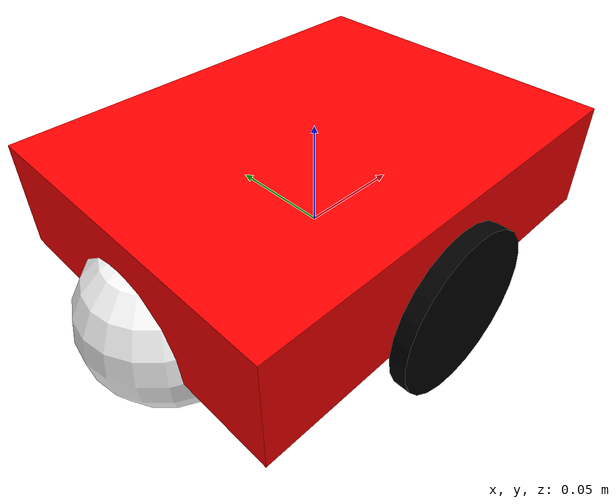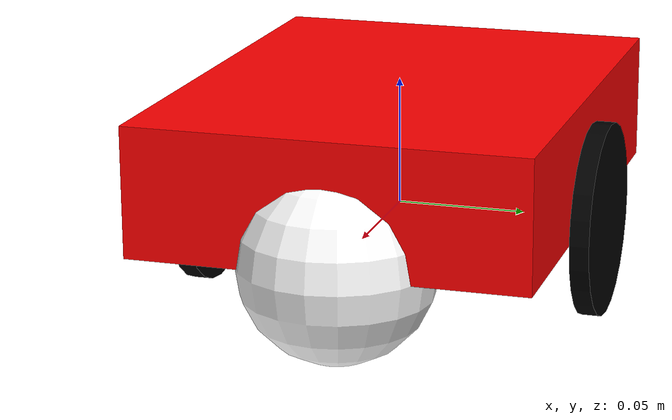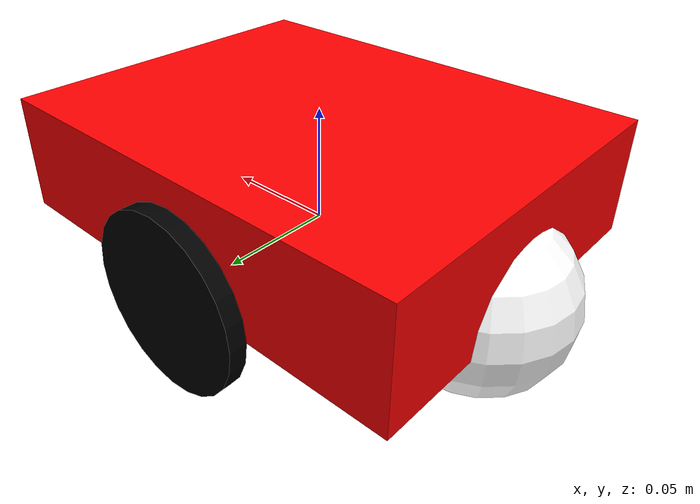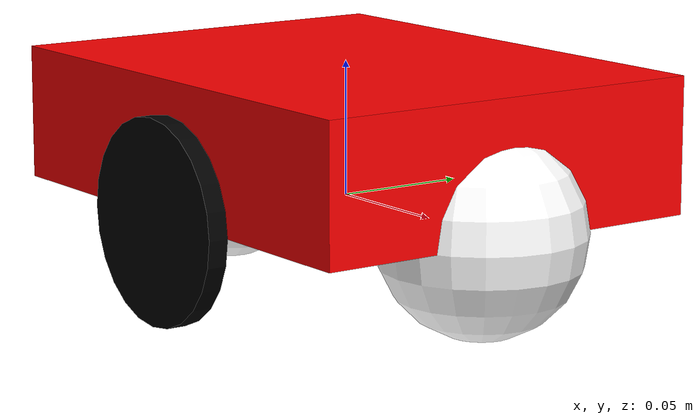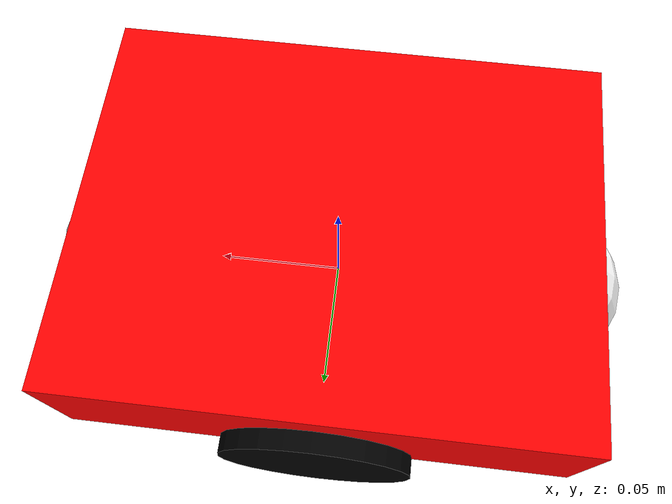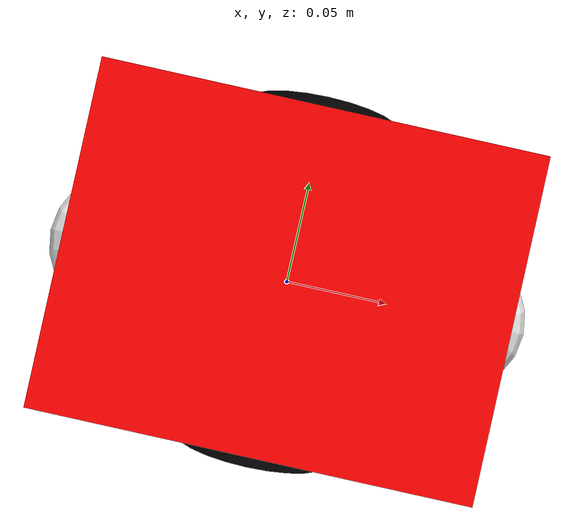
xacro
<?xml version="1.0"?>
<robot xmlns:xacro="http://www.ros.org/wiki/xacro"  name="robot">

    <xacro:include filename="inertial_macros.xacro" />

    <material name="white">
        <color rgba="1 1 1 1"/>
    </material>

    <material name="orange">
        <color rgba="1 0.3 0.1 1"/>
    </material>

    <material name="blue">
        <color rgba="0.2 0.2 1 1"/>
    </material>

    <material name="black">
        <color rgba="0 0 0 1"/>
    </material>

    <material name="red">
        <color rgba="1 0 0 1"/>
    </material>

    <link name="base_link">

    </link>

    <joint name="chassis_joint" type="fixed">
        <parent link="base_link"/>
        <child link="chassis"/>
        <origin xyz="0 0 0"/>
    </joint>

    <link name="chassis">
        <visual>
            <origin xyz="0 0 0.025" rpy="0 0 0"/>
            <geometry>
                <box size="0.195 0.1525 0.05"/>
            </geometry>
            <material name="red"/>
        </visual>
        <collision>
            <origin xyz="0 0 0.025" rpy="0 0 0"/>
            <geometry>
                <box size="0.175 0.1525 0.05"/>
            </geometry>
            <material name="red"/>
        </collision>
        <xacro:inertial_box mass="0.35" x="0.195" y="0.1525" z="0.05">
            <origin xyz="0 0 0.025" rpy="0 0 0"/>
        </xacro:inertial_box>
    </link>

    <gazebo reference="chassis">
        <material>Gazebo/Red</material>
    </gazebo>

    <!-- LEFT WHEEL -->

    <joint name="left_wheel_joint" type="continuous">
        <parent link="base_link"/>
        <child link="left_wheel"/>
        <origin xyz="0 0.08 0" rpy="-${pi/2} 0 0"/>
        <axis xyz="0 0 1"/>
    </joint>

    <link name="left_wheel">
        <visual>
            <geometry>
                <cylinder length="0.0075" radius="0.0375" />/>
            </geometry>
            <material name="black"/>
        </visual>
        <collision>
            <geometry>
                <cylinder length="0.0075" radius="0.0375" />/>
            </geometry>
            <material name="blue"/>
        </collision>
        <xacro:inertial_cylinder mass="0.1" length="0.0075" radius="0.0375">
            <origin xyz="0 0 0" rpy="0 0 0"/>
        </xacro:inertial_cylinder>
    </link>

    <gazebo reference="left_wheel">
        <material>Gazebo/Black</material>
    </gazebo>

    <!-- RIGHT WHEEL -->

    <joint name="right_wheel_joint" type="continuous">
        <parent link="base_link"/>
        <child link="right_wheel"/>
        <origin xyz="0 -0.08 0" rpy="${pi/2} 0 0"/>
        <axis xyz="0 0 -1"/>
    </joint>

    <link name="right_wheel">
        <visual>
            <geometry>
                <cylinder length="0.0075" radius="0.0375" />/>
            </geometry>
            <material name="black"/>
        </visual>
        <collision>
            <geometry>
                <cylinder length="0.0075" radius="0.0375" />/>
            </geometry>
            <material name="blue"/>
        </collision>
        <xacro:inertial_cylinder mass="0.1" length="0.0075" radius="0.0375">
            <origin xyz="0 0 0" rpy="0 0 0"/>
        </xacro:inertial_cylinder>
    </link>

    <gazebo reference="right_wheel">
        <material>Gazebo/Black</material>
    </gazebo>

    <!-- CASTER WHEEL -->

    <joint name="caster_wheel_joint_1" type="fixed">
        <parent link="chassis"/>
        <child link="caster_wheel_1"/>
        <origin xyz="0.08 0 0" rpy="0 0 0"/>
    </joint>

    <link name="caster_wheel_1">
        <visual>
            <geometry>
                <sphere radius="0.0375" />
            </geometry>
            <material name="white"/>
        </visual>
        <collision>
            <geometry>
                <sphere radius="0.0375" />
            </geometry>
            <material name="black"/>
        </collision>
        <xacro:inertial_sphere mass="0.1" radius="0.0375">
            <origin xyz="0 0 0" rpy="0 0 0"/>
        </xacro:inertial_sphere>
    </link>

    <gazebo reference="caster_wheel_1">
        <material>Gazebo/White</material>
        <mu1 value="0.001"/>
        <mu2 value="0.001"/>
    </gazebo>

      <joint name="caster_wheel_joint_2" type="fixed">
        <parent link="chassis"/>
        <child link="caster_wheel_2"/>
        <origin xyz="-0.08 0 0" rpy="0 0 0"/>
    </joint>

    <link name="caster_wheel_2">
        <visual>
            <geometry>
                <sphere radius="0.0375" />
            </geometry>
            <material name="white"/>
        </visual>
        <collision>
            <geometry>
                <sphere radius="0.0375" />
            </geometry>
            <material name="black"/>
        </collision>
        <xacro:inertial_sphere mass="0.1" radius="0.0375">
            <origin xyz="0 0 0" rpy="0 0 0"/>
        </xacro:inertial_sphere>
    </link>

    <gazebo reference="caster_wheel_2">
        <material>Gazebo/White</material>
        <mu1 value="0.001"/>
        <mu2 value="0.001"/>
    </gazebo>

</robot>
